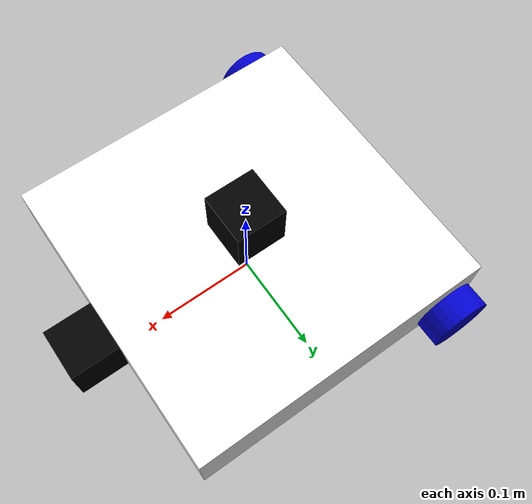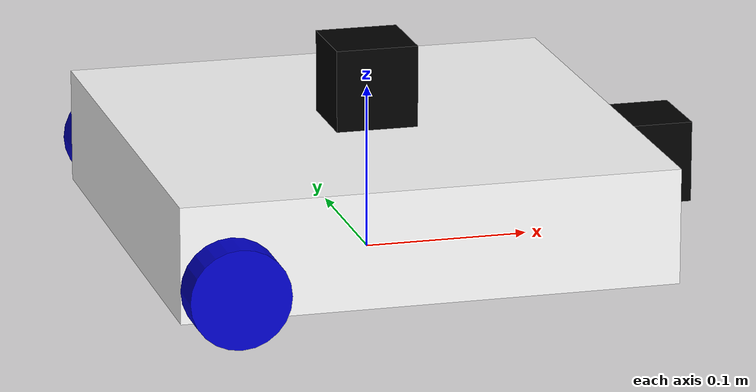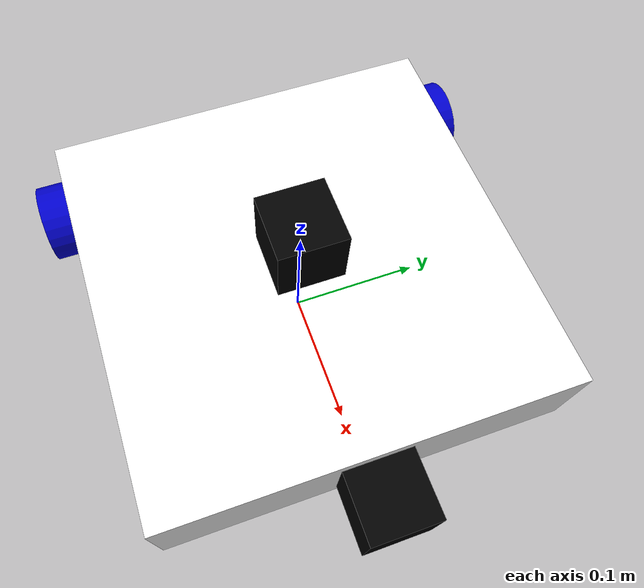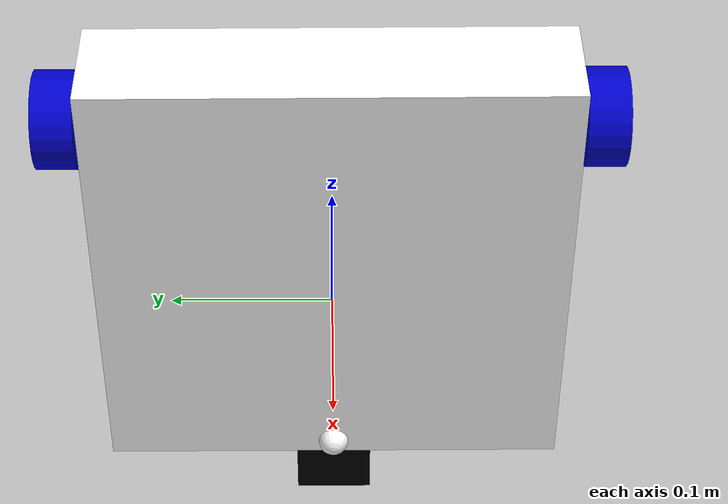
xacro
<?xml version='1.0'?>

<robot name="dd_sim" xmlns:xacro="http://www.ros.org/wiki/xacro">
    <material name="blue">
        <color rgba="0 0 0.8 1"/>
    </material>
    <material name="black">
      <color rgba="0 0 0 1"/>
    </material>
    <material name="white">
      <color rgba="1 1 1 1"/>
    </material>
    <link name='chassis'>
	<origin xyz = "0 0 0.045" rpy = "0 0 0"/>

    <inertial>
      <mass value="10.0"/>
      <origin xyz="0 0 0" rpy=" 0 0 0"/>
      <inertia
          ixx="0.1" ixy="0" ixz="0"
          iyy="0.1" iyz="0"
          izz="0.1"
      />
    </inertial>

    <collision name='collision'>
      <origin xyz = "0 0 0.045" rpy = "0 0 0"/>
      <geometry>
        <box size="0.3 0.3 0.07"/>
      </geometry>
    </collision>
    <visual name='chassis__visual'>
      <origin xyz="0 0 0.045" rpy=" 0 0 0"/>
      <geometry>
        <box size="0.3 0.3 0.07"/>
      </geometry>
      <material name = "white"/>
    </visual>
    <visual name='chassis_caster__visual'>
      <origin xyz="0.14 0 0.01" rpy=" 0 0 0"/>
      <geometry>
        <sphere radius = "0.01"/>
      </geometry>
      <material name = "white"/>
    </visual>
    <collision name = "collision_caster">
      <origin xyz = "0.135 0 0.005" rpy = "0 0 0"/>
      <geometry>
        <sphere radius = "0.005"/>
      </geometry>
      <surface>
        <friction>
          <ode>
            <mu>0.00</mu>
            <mu2>0.00</mu2>
            <slip1>1.0</slip1>
            <slip2>1.0</slip2>
          </ode>
        </friction>
      </surface>
    </collision>
  </link>

  <link name="link_1">
    <collision name="collision">
	    <!--origin xyz = "-0.12 -0.1625 0.045" rpy = "1.5708 -0 0"-->
      <geometry>
        <cylinder radius="0.03" length="0.025"/>
      </geometry>
    </collision>
    <visual name="link_1_visual">
	    <!--origin xyz = "-0.12 -0.1625 0.045" rpy = "1.5708 -0 0"-->
      <geometry>
        <cylinder radius="0.03" length="0.025"/>
      </geometry>
      <material name = "blue"/>
    </visual>
    <inertial>
      <!--origin xyz="0 0 0" rpy="0 -0 0"-->
      <mass value="5"/>
      <inertia
        ixx="0.1" ixy="0.0" ixz="0.0"
        iyy="0.1" iyz="0.0"
        izz="0.1"/>
    </inertial>
  </link>

  <link name="link_2">
    <collision name="collision">
	    <!--origin xyz = "-0.12 0.1625 0.045" rpy = "1.5708 -0 0"-->
      <geometry>
        <cylinder radius="0.03" length="0.025"/>
      </geometry>
    </collision>
    <visual name="link_2_visual">
	    <!--origin xyz = "-0.12 0.1625 0.045" rpy = "1.5708 -0 0"-->
      <geometry>
        <cylinder radius="0.03" length="0.025"/>
      </geometry>
	<material name = "blue"/>
    </visual>
    <inertial>
      <!--origin xyz="0 0 0" rpy="0 -0 0"-->
      <mass value="5"/>
      <inertia
        ixx="0.1" ixy="0.0" ixz="0.0"
        iyy="0.1" iyz="0.0"
        izz="0.1"/>
    </inertial>
  </link>
  <link name="camera">
    <collision>
      <!--origin xyz="0 0 0" rpy="0 0 0"-->
      <geometry>
        <box size="0.05 0.05 0.05"/>
      </geometry>
    </collision>

    <visual>
      <!--origin xyz="0 0 0" rpy="0 0 0"-->
      <geometry>
        <box size="0.05 0.05 0.05"/>
      </geometry>
      <material name="black"/>
    </visual>

    <inertial>
      <mass value= "0.1" />
      <!--origin xyz="0 0 0" rpy="0 0 0"-->
      <inertia ixx="1e-6" ixy="0" ixz="0" iyy="1e-6" iyz="0" izz="1e-6" />
    </inertial>
 </link>
<link name="hokuyo">
    <collision>
      <geometry>
        <box size="0.05 0.05 0.05"/>
      </geometry>
    </collision>

    <visual>
      <geometry>
        <box size="0.05 0.05 0.05"/>
      </geometry>
      <material name="black"/>
    </visual>

    <inertial>
      <mass value= "0.1" />
      <inertia ixx="1e-6" ixy="0" ixz="0" iyy="1e-6" iyz="0" izz="1e-6" />
    </inertial>
 </link>

  <joint type="continuous" name="link_0_JOINT_0">
    <parent link = "chassis"/>
    <child link="link_1"/>
    <axis xyz="0 0 -1"/>
    <limit effort="10000" velocity="3" lower ="-1.79769e+308" upper="1.79769e+308"/>
    <joint_properties damping="1.0" friction="1.0"/>
	    <!--origin xyz = "0 0 0" rpy = "0 0 0"-->
    <origin xyz = "-0.12 -0.1625 0.03" rpy = "1.5708 -0 0"/>
  </joint>

  <joint type="continuous" name="link_0_JOINT_1">
    <child link="link_2"/>
    <parent link="chassis"/>
    <axis xyz="0 0 -1"/>
    <limit effort="10000" velocity="3" lower ="-1.79769e+308" upper="1.79769e+308"/>
    <joint_properties damping="1.0" friction="1.0"/>
	    <!--origin xyz = "0 0 0" rpy = "0 0 0"-->
    <origin xyz = "-0.12 0.1625 0.03" rpy = "1.5708 -0 0"/>
  </joint>

  <joint name="laser_joint" type="fixed">
    <axis xyz="0 1 0" />
    <origin xyz="0.1725 0 0.045" rpy="0 0 0"/>
    <parent link="chassis"/>
    <child link="hokuyo"/>
  </joint>
<joint name="camera_joint" type="fixed">
    <axis xyz="0 1 0" />
    <origin xyz="0 0 0.105" rpy="0 0 0"/>
    <parent link="chassis"/>
    <child link="camera"/>
 </joint>

  <gazebo>
	  <plugin name="differential_drive_controller" filename="libgazebo_ros_diff_drive.so">

        <!-- Plugin update rate in Hz -->
        <updateRate>100</updateRate>

        <!-- Name of left joint, defaults to `left_joint` -->
        <leftJoint>link_0_JOINT_1</leftJoint>

        <!-- Name of right joint, defaults to `right_joint` -->
        <rightJoint>link_0_JOINT_0</rightJoint>

        <!-- The distance from the center of one wheel to the other, in meters, defaults to 0.34 m -->
        <wheelSeparation>0.325</wheelSeparation>

        <!-- Diameter of the wheels, in meters, defaults to 0.15 m -->
        <wheelDiameter>0.06</wheelDiameter>

        <!-- Wheel acceleration, in rad/s^2, defaults to 0.0 rad/s^2 -->
        <wheelAcceleration>0.0</wheelAcceleration>

        <!-- Maximum torque which the wheels can produce, in Nm, defaults to 5 Nm -->
        <wheelTorque>5</wheelTorque>

        <!-- Topic to receive geometry_msgs/Twist message commands, defaults to `cmd_vel` -->
        <commandTopic>cmd_vel</commandTopic>

        <!-- Topic to publish nav_msgs/Odometry messages, defaults to `odom` -->
        <odometryTopic>odom</odometryTopic>

        <!-- Odometry frame, defaults to `odom` -->
        <odometryFrame>odom</odometryFrame>

        <!-- Robot frame to calculate odometry from, defaults to `base_footprint` -->
        <robotBaseFrame>chassis</robotBaseFrame>

        <!-- Odometry source, 0 for ENCODER, 1 for WORLD, defaults to WORLD -->
        <odometrySource>1</odometrySource>

        <!-- Set to true to publish transforms for the wheel links, defaults to false -->
        <publishWheelTF>true</publishWheelTF>

        <!-- Set to true to publish transforms for the odometry, defaults to true -->
        <publishOdom>true</publishOdom>
       <!-- Set to true to publish sensor_msgs/JointState on /joint_states for the wheel joints, defaults to false -->
        <publishWheelJointState>true</publishWheelJointState>

        <!-- Set to true to swap right and left wheels, defaults to true -->
	<legacyMode>true</legacyMode>
	</plugin>
    </gazebo>
    <gazebo reference="camera">
    <sensor type="camera" name="camera1">
      <update_rate>30.0</update_rate>
      <camera name="head">
        <horizontal_fov>1.3962634</horizontal_fov>
        <image>
          <width>800</width>
          <height>800</height>
          <format>R8G8B8</format>
        </image>
        <clip>
          <near>0.02</near>
          <far>300</far>
        </clip>
      </camera>
      <plugin name="camera_controller" filename="libgazebo_ros_camera.so">
        <alwaysOn>true</alwaysOn>
        <updateRate>0.0</updateRate>
        <cameraName>mybot/camera1</cameraName>
        <imageTopicName>image_raw</imageTopicName>
        <cameraInfoTopicName>camera_info</cameraInfoTopicName>
        <frameName>camera</frameName>
        <hackBaseline>0.07</hackBaseline>
        <distortionK1>0.0</distortionK1>
        <distortionK2>0.0</distortionK2>
        <distortionK3>0.0</distortionK3>
        <distortionT1>0.0</distortionT1>
        <distortionT2>0.0</distortionT2>
      </plugin>
    </sensor>
  </gazebo>
  <gazebo reference="kinect">
	    <sensor type="depth" name="camera1">
		<always_on>1</always_on>
		<visualize>true</visualize>
		<camera>
		    <horizontal_fov>1.047</horizontal_fov>
		    <image>
		        <width>640</width>
		        <height>480</height>
		        <format>R8G8B8</format>
		    </image>
		    <depth_camera>

		    </depth_camera>
		    <clip>
		        <near>0.1</near>
		        <far>100</far>
		    </clip>
		</camera>
		     <plugin name="camera_controller" filename="libgazebo_ros_openni_kinect.so">
		     <alwaysOn>true</alwaysOn>
		        <updateRate>10.0</updateRate>
		        <cameraName>kinect</cameraName>
		        <frameName>hokuyo</frameName>
		    <imageTopicName>rgb/image_raw</imageTopicName>
		    <depthImageTopicName>depth/image_raw</depthImageTopicName>
		    <pointCloudTopicName>depth/points</pointCloudTopicName>
		    <cameraInfoTopicName>rgb/camera_info</cameraInfoTopicName>
		    <depthImageCameraInfoTopicName>depth/camera_info</depthImageCameraInfoTopicName>
		    <pointCloudCutoff>0.4</pointCloudCutoff>
		        <hackBaseline>0.07</hackBaseline>
		        <distortionK1>0.0</distortionK1>
		        <distortionK2>0.0</distortionK2>
		        <distortionK3>0.0</distortionK3>
		        <distortionT1>0.0</distortionT1>
		        <distortionT2>0.0</distortionT2>
		    <CxPrime>0.0</CxPrime>
		    <Cx>0.0</Cx>
		    <Cy>0.0</Cy>
		    <focalLength>0.0</focalLength>
		    </plugin>
	    </sensor>
	  </gazebo>
</robot>
